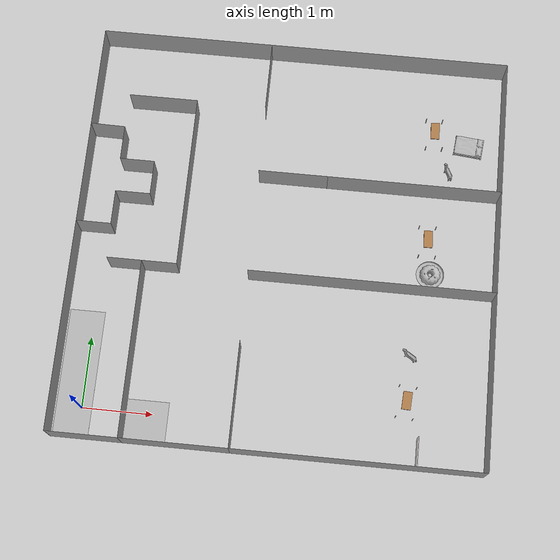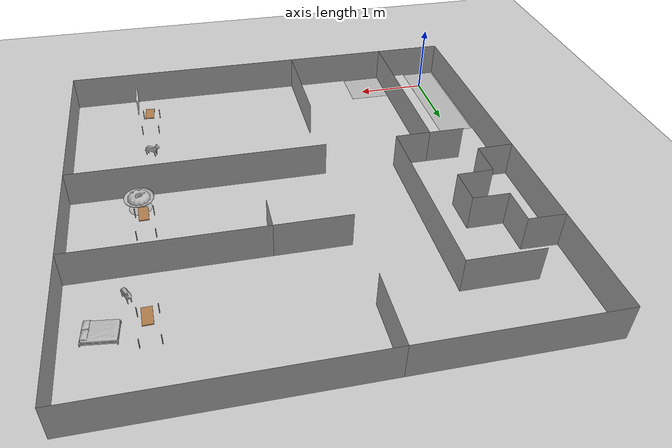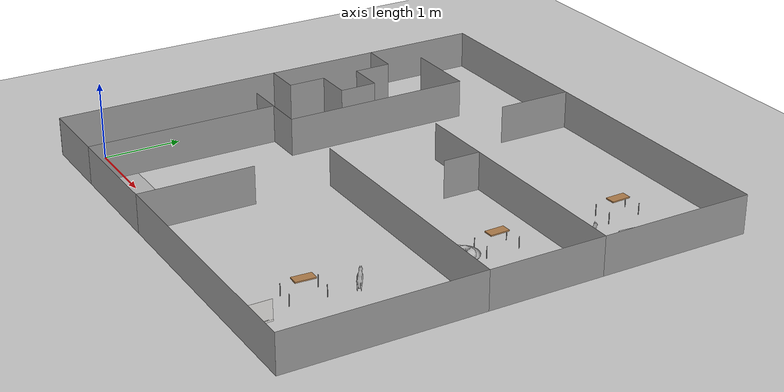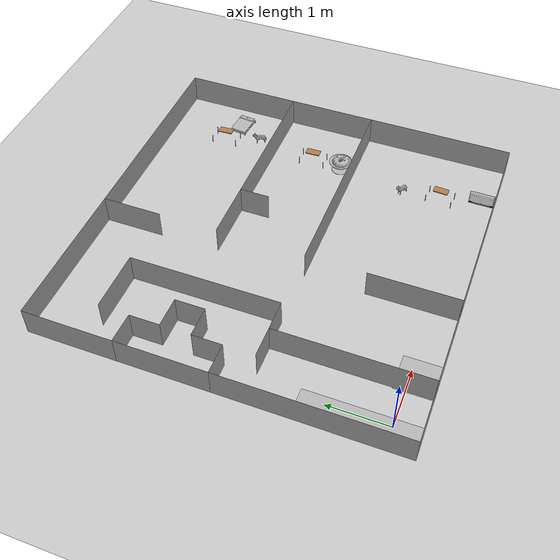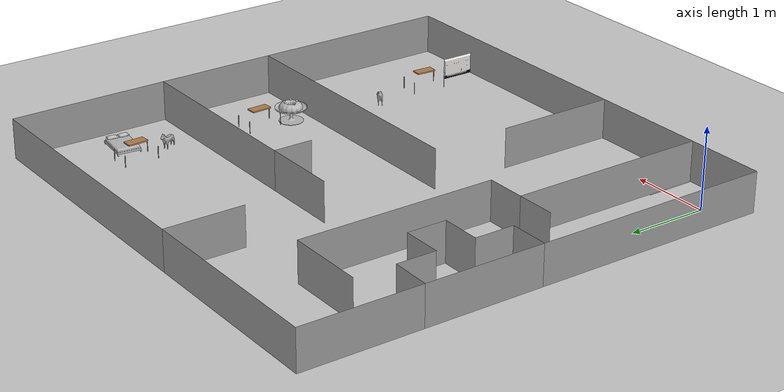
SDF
<sdf version="1.6">
 <world name="default">
  <light name="sun" type="directional">
   <pose>0 0 10 0 -0 0</pose>
   <diffuse>0.8 0.8 0.8 1</diffuse>
   <specular>0.2 0.2 0.2 1</specular>
   <attenuation>
    <range>1000</range>
    <constant>0.9</constant>
    <linear>0.01</linear>
    <quadratic>0.001</quadratic>
   </attenuation>
   <direction>-0.5 0.1 -0.9</direction>
   <spot><inner_angle>0</inner_angle><outer_angle>0</outer_angle><falloff>0</falloff></spot>
  </light>
  <model name="food">
   <pose>4.68908 2.32908 0.003781 1.57207 -0.004784 -1.83149</pose>
   <static>1</static>
   <link name="up">
    <visual name="visual">
     <geometry><mesh><uri>/home/cf/ai_ws/src/gazebo_pkg/world/food.dae</uri><scale>1 1 1</scale></mesh></geometry>
    </visual>
   </link>
  </model>
  <model name="television">
   <pose>4.66832 -0.195834 0.015327 1.5754 -0 0</pose>
   <static>1</static>
   <link name="up">
    <visual name="visual">
     <geometry>
      <mesh><uri>/home/cf/ai_ws/src/gazebo_pkg/world/television.dae</uri><scale>0.025 0.025 0.025</scale></mesh>
     </geometry>
    </visual>
   </link>
  </model>
  <model name="bed">
   <pose>5.1563 4.39255 0.001379 1.57971 -0.005009 -1.67665</pose>
   <static>1</static>
   <link name="up">
    <visual name="visual">
     <geometry>
      <mesh><uri>/home/cf/ai_ws/src/gazebo_pkg/world/arch3d-model.dae</uri><scale>0.21 0.21 0.21</scale></mesh>
     </geometry>
    </visual>
   </link>
  </model>
  <model name="dog">
   <pose>4.88849 3.95667 -0.000617 0.020771 -0.010242 2.02883</pose>
   <static>1</static>
   <link name="up">
    <visual name="visual">
     <geometry>
      <mesh><uri>/home/cf/ai_ws/src/gazebo_pkg/world/dog.dae</uri><scale>0.03 0.03 0.03</scale></mesh>
     </geometry>
    </visual>
   </link>
  </model>
  <model name="dog1">
   <pose>4.49439 1.17252 0.008625 0.03279 -0.051548 2.57468</pose>
   <static>1</static>
   <link name="up">
    <visual name="visual">
     <geometry>
      <mesh><uri>/home/cf/ai_ws/src/gazebo_pkg/world/dog.dae</uri><scale>0.03 0.03 0.03</scale></mesh>
     </geometry>
    </visual>
   </link>
  </model>
  <model name="ground_plane">
   <static>1</static>
   <link name="link">
    <collision name="collision">
     <geometry><plane><normal>0 0 1</normal><size>100 100</size></plane></geometry>
     <surface><friction><ode><mu>100</mu><mu2>50</mu2></ode></friction></surface>
    </collision>
    <visual name="visual">
     <cast_shadows>0</cast_shadows>
     <geometry><plane><normal>0 0 1</normal><size>100 100</size></plane></geometry>
     <material>
      <script><uri>file://media/materials/scripts/gazebo.material</uri><name>Gazebo/Grey</name></script>
     </material>
    </visual>
   </link>
  </model>
  <gravity>0 0 -9.8</gravity>
  <magnetic_field>6e-06 2.3e-05 -4.2e-05</magnetic_field>
  <atmosphere type="adiabatic"/>
  <physics name="default_physics" default="0" type="ode">
   <max_step_size>0.001</max_step_size>
   <real_time_factor>1</real_time_factor>
   <real_time_update_rate>1000</real_time_update_rate>
  </physics>
  <scene><ambient>0.4 0.4 0.4 1</ambient><background>0.7 0.7 0.7 1</background><shadows>1</shadows></scene>
  <spherical_coordinates>
   <surface_model>EARTH_WGS84</surface_model>
   <latitude_deg>0</latitude_deg>
   <longitude_deg>0</longitude_deg>
   <elevation>0</elevation>
   <heading_deg>0</heading_deg>
  </spherical_coordinates>
  <model name="xf">
   <pose>2.61586 2.56629 0 0 -0 0</pose>
   <link name="Wall_0">
    <collision name="Wall_0_Collision">
     <geometry><box><size>2.995 0 0.5</size></box></geometry>
     <pose>0 0 0.25 0 -0 0</pose>
    </collision>
    <visual name="Wall_0_Visual">
     <pose>0 0 0.25 0 -0 0</pose>
     <geometry><box><size>2.995 0 0.5</size></box></geometry>
     <material>
      <script><uri>file://media/materials/scripts/gazebo.material</uri><name>Gazebo/Grey</name></script>
      <ambient>1 1 1 1</ambient>
     </material>
     <meta><layer>0</layer></meta>
    </visual>
    <pose>-2.995 -1.495 0 0 -0 1.5708</pose>
   </link>
   <link name="Wall_10">
    <collision name="Wall_10_Collision">
     <geometry><box><size>0.495 0 0.5</size></box></geometry>
     <pose>0 0 0.25 0 -0 0</pose>
    </collision>
    <visual name="Wall_10_Visual">
     <pose>0 0 0.25 0 -0 0</pose>
     <geometry><box><size>0.495 0 0.5</size></box></geometry>
     <material>
      <script><uri>file://media/materials/scripts/gazebo.material</uri><name>Gazebo/Grey</name></script>
      <ambient>1 1 1 1</ambient>
     </material>
     <meta><layer>0</layer></meta>
    </visual>
    <pose>-2.2525 0.4975 0 0 -0 0</pose>
   </link>
   <link name="Wall_12">
    <collision name="Wall_12_Collision">
     <geometry><box><size>0.495 0 0.5</size></box></geometry>
     <pose>0 0 0.25 0 -0 0</pose>
    </collision>
    <visual name="Wall_12_Visual">
     <pose>0 0 0.25 0 -0 0</pose>
     <geometry><box><size>0.495 0 0.5</size></box></geometry>
     <material>
      <script><uri>file://media/materials/scripts/gazebo.material</uri><name>Gazebo/Grey</name></script>
      <ambient>1 1 1 1</ambient>
     </material>
     <meta><layer>0</layer></meta>
    </visual>
    <pose>-2.005 0.745 0 0 -0 1.5708</pose>
   </link>
   <link name="Wall_14">
    <collision name="Wall_14_Collision">
     <geometry><box><size>0.495 0 0.5</size></box></geometry>
     <pose>0 0 0.25 0 -0 0</pose>
    </collision>
    <visual name="Wall_14_Visual">
     <pose>0 0 0.25 0 -0 0</pose>
     <geometry><box><size>0.495 0 0.5</size></box></geometry>
     <material>
      <script><uri>file://media/materials/scripts/gazebo.material</uri><name>Gazebo/Grey</name></script>
      <ambient>1 1 1 1</ambient>
     </material>
     <meta><layer>0</layer></meta>
    </visual>
    <pose>-2.2525 0.9925 0 0 -0 3.14159</pose>
   </link>
   <link name="Wall_17">
    <collision name="Wall_17_Collision">
     <geometry><box><size>0.495 0 0.5</size></box></geometry>
     <pose>0 0 0.25 0 -0 0</pose>
    </collision>
    <visual name="Wall_17_Visual">
     <pose>0 0 0.25 0 -0 0</pose>
     <geometry><box><size>0.495 0 0.5</size></box></geometry>
     <material>
      <script><uri>file://media/materials/scripts/gazebo.material</uri><name>Gazebo/Grey</name></script>
      <ambient>1 1 1 1</ambient>
     </material>
     <meta><layer>0</layer></meta>
    </visual>
    <pose>-2.5 1.24 0 0 -0 1.5708</pose>
   </link>
   <link name="Wall_19">
    <collision name="Wall_19_Collision">
     <geometry><box><size>0.495 0 0.5</size></box></geometry>
     <pose>0 0 0.25 0 -0 0</pose>
    </collision>
    <visual name="Wall_19_Visual">
     <pose>0 0 0.25 0 -0 0</pose>
     <geometry><box><size>0.495 0 0.5</size></box></geometry>
     <material>
      <script><uri>file://media/materials/scripts/gazebo.material</uri><name>Gazebo/Grey</name></script>
      <ambient>1 1 1 1</ambient>
     </material>
     <meta><layer>0</layer></meta>
    </visual>
    <pose>-2.7475 1.4925 0 0 -0 3.12139</pose>
   </link>
   <link name="Wall_21">
    <collision name="Wall_21_Collision">
     <geometry><box><size>1.495 0 0.5</size></box></geometry>
     <pose>0 0 0.25 0 -0 0</pose>
    </collision>
    <visual name="Wall_21_Visual">
     <pose>0 0 0.25 0 -0 0</pose>
     <geometry><box><size>1.495 0 0.5</size></box></geometry>
     <material>
      <script><uri>file://media/materials/scripts/gazebo.material</uri><name>Gazebo/Grey</name></script>
      <ambient>1 1 1 1</ambient>
     </material>
     <meta><layer>0</layer></meta>
    </visual>
    <pose>-2.995 0.75 0 0 -0 1.5708</pose>
   </link>
   <link name="Wall_24">
    <collision name="Wall_24_Collision">
     <geometry><box><size>1.495 0 0.5</size></box></geometry>
     <pose>0 0 0.25 0 -0 0</pose>
    </collision>
    <visual name="Wall_24_Visual">
     <pose>0 0 0.25 0 -0 0</pose>
     <geometry><box><size>1.495 0 0.5</size></box></geometry>
     <material>
      <script><uri>file://media/materials/scripts/gazebo.material</uri><name>Gazebo/Grey</name></script>
      <ambient>1 1 1 1</ambient>
     </material>
     <meta><layer>0</layer></meta>
    </visual>
    <pose>-2.995 2.245 0 0 -0 1.5708</pose>
   </link>
   <link name="Wall_26">
    <collision name="Wall_26_Collision">
     <geometry><box><size>2.495 0 0.5</size></box></geometry>
     <pose>0 0 0.25 0 -0 0</pose>
    </collision>
    <visual name="Wall_26_Visual">
     <pose>0 0 0.25 0 -0 0</pose>
     <geometry><box><size>2.495 0 0.5</size></box></geometry>
     <material>
      <script><uri>file://media/materials/scripts/gazebo.material</uri><name>Gazebo/Grey</name></script>
      <ambient>1 1 1 1</ambient>
     </material>
     <meta><layer>0</layer></meta>
    </visual>
    <pose>-1.7475 2.9925 0 0 -0 0</pose>
   </link>
   <link name="Wall_28">
    <collision name="Wall_28_Collision">
     <geometry><box><size>0.995 0 0.5</size></box></geometry>
     <pose>0 0 0.25 0 -0 0</pose>
    </collision>
    <visual name="Wall_28_Visual">
     <pose>0 0 0.25 0 -0 0</pose>
     <geometry><box><size>0.995 0 0.5</size></box></geometry>
     <material>
      <script><uri>file://media/materials/scripts/gazebo.material</uri><name>Gazebo/Grey</name></script>
      <ambient>1 1 1 1</ambient>
     </material>
     <meta><layer>0</layer></meta>
    </visual>
    <pose>-0.5 2.495 0 0 -0 -1.5708</pose>
   </link>
   <link name="Wall_30">
    <collision name="Wall_30_Collision">
     <geometry><box><size>3.495 0 0.5</size></box></geometry>
     <pose>0 0 0.25 0 -0 0</pose>
    </collision>
    <visual name="Wall_30_Visual">
     <pose>0 0 0.25 0 -0 0</pose>
     <geometry><box><size>3.495 0 0.5</size></box></geometry>
     <material>
      <script><uri>file://media/materials/scripts/gazebo.material</uri><name>Gazebo/Grey</name></script>
      <ambient>1 1 1 1</ambient>
     </material>
     <meta><layer>0</layer></meta>
    </visual>
    <pose>1.2475 2.9925 0 0 -0 0</pose>
   </link>
   <link name="Wall_32">
    <collision name="Wall_32_Collision">
     <geometry><box><size>1.995 0 0.5</size></box></geometry>
     <pose>0 0 0.25 0 -0 0</pose>
    </collision>
    <visual name="Wall_32_Visual">
     <pose>0 0 0.25 0 -0 0</pose>
     <geometry><box><size>1.995 0 0.5</size></box></geometry>
     <material>
      <script><uri>file://media/materials/scripts/gazebo.material</uri><name>Gazebo/Grey</name></script>
      <ambient>1 1 1 1</ambient>
     </material>
     <meta><layer>0</layer></meta>
    </visual>
    <pose>2.995 1.995 0 0 -0 -1.5708</pose>
   </link>
   <link name="Wall_37">
    <collision name="Wall_37_Collision">
     <geometry><box><size>2.495 0 0.5</size></box></geometry>
     <pose>0 0 0.25 0 -0 0</pose>
    </collision>
    <visual name="Wall_37_Visual">
     <pose>0 0 0.25 0 -0 0</pose>
     <geometry><box><size>2.495 0 0.5</size></box></geometry>
     <material>
      <script><uri>file://media/materials/scripts/gazebo.material</uri><name>Gazebo/Grey</name></script>
      <ambient>1 1 1 1</ambient>
     </material>
     <meta><layer>0</layer></meta>
    </visual>
    <pose>1.7475 0.9975 0 0 -0 3.14159</pose>
   </link>
   <link name="Wall_39">
    <collision name="Wall_39_Collision">
     <geometry><box><size>0.495 0 0.5</size></box></geometry>
     <pose>0 0 0.25 0 -0 0</pose>
    </collision>
    <visual name="Wall_39_Visual">
     <pose>0 0 0.25 0 -0 0</pose>
     <geometry><box><size>0.495 0 0.5</size></box></geometry>
     <material>
      <script><uri>file://media/materials/scripts/gazebo.material</uri><name>Gazebo/Grey</name></script>
      <ambient>1 1 1 1</ambient>
     </material>
     <meta><layer>0</layer></meta>
    </visual>
    <pose>0.5 0.75 0 0 -0 -1.5708</pose>
   </link>
   <link name="Wall_4">
    <collision name="Wall_4_Collision">
     <geometry><box><size>0.495 0 0.5</size></box></geometry>
     <pose>0 0 0.25 0 -0 0</pose>
    </collision>
    <visual name="Wall_4_Visual">
     <pose>0 0 0.25 0 -0 0</pose>
     <geometry><box><size>0.495 0 0.5</size></box></geometry>
     <material>
      <script><uri>file://media/materials/scripts/gazebo.material</uri><name>Gazebo/Grey</name></script>
      <ambient>1 1 1 1</ambient>
     </material>
     <meta><layer>0</layer></meta>
    </visual>
    <pose>-2.7475 0.0025 0 0 -0 0</pose>
   </link>
   <link name="Wall_41">
    <collision name="Wall_41_Collision">
     <geometry><box><size>0.995 0 0.5</size></box></geometry>
     <pose>0 0 0.25 0 -0 0</pose>
    </collision>
    <visual name="Wall_41_Visual">
     <pose>0 0 0.25 0 -0 0</pose>
     <geometry><box><size>0.995 0 0.5</size></box></geometry>
     <material>
      <script><uri>file://media/materials/scripts/gazebo.material</uri><name>Gazebo/Grey</name></script>
      <ambient>1 1 1 1</ambient>
     </material>
     <meta><layer>0</layer></meta>
    </visual>
    <pose>0.0025 0.9975 0 0 -0 3.14159</pose>
   </link>
   <link name="Wall_43">
    <collision name="Wall_43_Collision">
     <geometry><box><size>1.49503 0 0.5</size></box></geometry>
     <pose>0 0 0.25 0 -0 0</pose>
    </collision>
    <visual name="Wall_43_Visual">
     <pose>0 0 0.25 0 -0 0</pose>
     <geometry><box><size>1.49503 0 0.5</size></box></geometry>
     <material>
      <script><uri>file://media/materials/scripts/gazebo.material</uri><name>Gazebo/Grey</name></script>
      <ambient>1 1 1 1</ambient>
     </material>
     <meta><layer>0</layer></meta>
    </visual>
    <pose>2.995 0.25 0 0 -0 -1.5708</pose>
   </link>
   <link name="Wall_47">
    <collision name="Wall_47_Collision">
     <geometry><box><size>3.495 0 0.5</size></box></geometry>
     <pose>0 0 0.25 0 -0 0</pose>
    </collision>
    <visual name="Wall_47_Visual">
     <pose>0 0 0.25 0 -0 0</pose>
     <geometry><box><size>3.495 0 0.5</size></box></geometry>
     <material>
      <script><uri>file://media/materials/scripts/gazebo.material</uri><name>Gazebo/Grey</name></script>
      <ambient>1 1 1 1</ambient>
     </material>
     <meta><layer>0</layer></meta>
    </visual>
    <pose>1.2475 -0.4975 0 0 -0 3.14159</pose>
   </link>
   <link name="Wall_49">
    <collision name="Wall_49_Collision">
     <geometry><box><size>2.495 0 0.5</size></box></geometry>
     <pose>0 0 0.25 0 -0 0</pose>
    </collision>
    <visual name="Wall_49_Visual">
     <pose>0 0 0.25 0 -0 0</pose>
     <geometry><box><size>2.495 0 0.5</size></box></geometry>
     <material>
      <script><uri>file://media/materials/scripts/gazebo.material</uri><name>Gazebo/Grey</name></script>
      <ambient>1 1 1 1</ambient>
     </material>
     <meta><layer>0</layer></meta>
    </visual>
    <pose>2.995 -1.745 0 0 -0 -1.5708</pose>
   </link>
   <link name="Wall_51">
    <collision name="Wall_51_Collision">
     <geometry><box><size>3.495 0 0.5</size></box></geometry>
     <pose>0 0 0.25 0 -0 0</pose>
    </collision>
    <visual name="Wall_51_Visual">
     <pose>0 0 0.25 0 -0 0</pose>
     <geometry><box><size>3.495 0 0.5</size></box></geometry>
     <material>
      <script><uri>file://media/materials/scripts/gazebo.material</uri><name>Gazebo/Grey</name></script>
      <ambient>1 1 1 1</ambient>
     </material>
     <meta><layer>0</layer></meta>
    </visual>
    <pose>1.2475 -2.9925 0 0 -0 3.14159</pose>
   </link>
   <link name="Wall_53">
    <collision name="Wall_53_Collision">
     <geometry><box><size>1.495 0 0.5</size></box></geometry>
     <pose>0 0 0.25 0 -0 0</pose>
    </collision>
    <visual name="Wall_53_Visual">
     <pose>0 0 0.25 0 -0 0</pose>
     <geometry><box><size>1.495 0 0.5</size></box></geometry>
     <material>
      <script><uri>file://media/materials/scripts/gazebo.material</uri><name>Gazebo/Grey</name></script>
      <ambient>1 1 1 1</ambient>
     </material>
     <meta><layer>0</layer></meta>
    </visual>
    <pose>-0.5 -2.245 0 0 -0 1.5708</pose>
   </link>
   <link name="Wall_55">
    <collision name="Wall_55_Collision">
     <geometry><box><size>1.495 0 0.5</size></box></geometry>
     <pose>0 0 0.25 0 -0 0</pose>
    </collision>
    <visual name="Wall_55_Visual">
     <pose>0 0 0.25 0 -0 0</pose>
     <geometry><box><size>1.495 0 0.5</size></box></geometry>
     <material>
      <script><uri>file://media/materials/scripts/gazebo.material</uri><name>Gazebo/Grey</name></script>
      <ambient>1 1 1 1</ambient>
     </material>
     <meta><layer>0</layer></meta>
    </visual>
    <pose>-1.2475 -2.9925 0 0 -0 3.14159</pose>
   </link>
   <link name="Wall_57">
    <collision name="Wall_57_Collision">
     <geometry><box><size>2.495 0 0.5</size></box></geometry>
     <pose>0 0 0.25 0 -0 0</pose>
    </collision>
    <visual name="Wall_57_Visual">
     <pose>0 0 0.25 0 -0 0</pose>
     <geometry><box><size>2.495 0 0.5</size></box></geometry>
     <material>
      <script><uri>file://media/materials/scripts/gazebo.material</uri><name>Gazebo/Grey</name></script>
      <ambient>1 1 1 1</ambient>
     </material>
     <meta><layer>0</layer></meta>
    </visual>
    <pose>-1.995 -1.745 0 0 -0 1.5708</pose>
   </link>
   <link name="Wall_59">
    <collision name="Wall_59_Collision">
     <geometry><box><size>0.495 0 0.5</size></box></geometry>
     <pose>0 0 0.25 0 -0 0</pose>
    </collision>
    <visual name="Wall_59_Visual">
     <pose>0 0 0.25 0 -0 0</pose>
     <geometry><box><size>0.495 0 0.5</size></box></geometry>
     <material>
      <script><uri>file://media/materials/scripts/gazebo.material</uri><name>Gazebo/Grey</name></script>
      <ambient>1 1 1 1</ambient>
     </material>
     <meta><layer>0</layer></meta>
    </visual>
    <pose>-2.2425 -0.4975 0 0 -0 3.14159</pose>
   </link>
   <link name="Wall_61">
    <collision name="Wall_61_Collision">
     <geometry><box><size>0.495 0 0.5</size></box></geometry>
     <pose>0 0 0.25 0 -0 0</pose>
    </collision>
    <visual name="Wall_61_Visual">
     <pose>0 0 0.25 0 -0 0</pose>
     <geometry><box><size>0.495 0 0.5</size></box></geometry>
     <material>
      <script><uri>file://media/materials/scripts/gazebo.material</uri><name>Gazebo/Grey</name></script>
      <ambient>1 1 1 1</ambient>
     </material>
     <meta><layer>0</layer></meta>
    </visual>
    <pose>-1.7475 -0.4975 0 0 -0 0</pose>
   </link>
   <link name="Wall_63">
    <collision name="Wall_63_Collision">
     <geometry><box><size>2.495 0 0.5</size></box></geometry>
     <pose>0 0 0.25 0 -0 0</pose>
    </collision>
    <visual name="Wall_63_Visual">
     <pose>0 0 0.25 0 -0 0</pose>
     <geometry><box><size>2.495 0 0.5</size></box></geometry>
     <material>
      <script><uri>file://media/materials/scripts/gazebo.material</uri><name>Gazebo/Grey</name></script>
      <ambient>1 1 1 1</ambient>
     </material>
     <meta><layer>0</layer></meta>
    </visual>
    <pose>-1.5 0.75 0 0 -0 1.5708</pose>
   </link>
   <link name="Wall_65">
    <collision name="Wall_65_Collision">
     <geometry><box><size>0.995 0 0.5</size></box></geometry>
     <pose>0 0 0.25 0 -0 0</pose>
    </collision>
    <visual name="Wall_65_Visual">
     <pose>0 0 0.25 0 -0 0</pose>
     <geometry><box><size>0.995 0 0.5</size></box></geometry>
     <material>
      <script><uri>file://media/materials/scripts/gazebo.material</uri><name>Gazebo/Grey</name></script>
      <ambient>1 1 1 1</ambient>
     </material>
     <meta><layer>0</layer></meta>
    </visual>
    <pose>-1.9975 1.9975 0 0 -0 3.14159</pose>
   </link>
   <link name="Wall_67">
    <collision name="Wall_67_Collision">
     <geometry><box><size>0.995 0 0.5</size></box></geometry>
     <pose>0 0 0.25 0 -0 0</pose>
    </collision>
    <visual name="Wall_67_Visual">
     <pose>0 0 0.25 0 -0 0</pose>
     <geometry><box><size>0.995 0 0.5</size></box></geometry>
     <material>
      <script><uri>file://media/materials/scripts/gazebo.material</uri><name>Gazebo/Grey</name></script>
      <ambient>1 1 1 1</ambient>
     </material>
     <meta><layer>0</layer></meta>
    </visual>
    <pose>-2.4925 -2.9925 0 0 -0 3.14159</pose>
   </link>
   <link name="Wall_8">
    <collision name="Wall_8_Collision">
     <geometry><box><size>0.495 0 0.5</size></box></geometry>
     <pose>0 0 0.25 0 -0 0</pose>
    </collision>
    <visual name="Wall_8_Visual">
     <pose>0 0 0.25 0 -0 0</pose>
     <geometry><box><size>0.495 0 0.5</size></box></geometry>
     <material>
      <script><uri>file://media/materials/scripts/gazebo.material</uri><name>Gazebo/Grey</name></script>
      <ambient>1 1 1 1</ambient>
     </material>
     <meta><layer>0</layer></meta>
    </visual>
    <pose>-2.5 0.25 0 0 -0 1.5708</pose>
   </link>
   <static>1</static>
  </model>
  <model name="start_plane">
   <static>1</static>
   <link name="link">
    <collision name="collision">
     <geometry><plane><normal>0 0 1</normal><size>0.5 1.8</size></plane></geometry>
     <surface><friction><ode><mu>100</mu><mu2>50</mu2></ode></friction></surface>
    </collision>
    <visual name="visual">
     <cast_shadows>0</cast_shadows>
     <geometry><plane><normal>0 0 1</normal><size>0.5 1.8</size></plane></geometry>
     <material>
      <script>
       <uri>model://start_plane/materials/scripts</uri>
       <uri>model://start_plane/materials/textures/</uri>
       <name>StartPlane/Image</name>
      </script>
     </material>
    </visual>
   </link>
   <pose>-0.110172 0.491277 0 0 -0 0</pose>
  </model>
  <model name="end_plane">
   <static>1</static>
   <link name="link">
    <collision name="collision">
     <geometry><plane><normal>0 0 1</normal><size>0.6 0.6</size></plane></geometry>
     <surface><friction><ode><mu>100</mu><mu2>50</mu2></ode></friction></surface>
    </collision>
    <visual name="visual">
     <cast_shadows>0</cast_shadows>
     <geometry><plane><normal>0 0 1</normal><size>0.6 0.6</size></plane></geometry>
     <material>
      <script>
       <uri>model://end_plane/materials/scripts</uri>
       <uri>model://end_plane/materials/textures/</uri>
       <name>EndPlane/Image</name>
      </script>
     </material>
    </visual>
   </link>
   <pose>0.907499 -0.109967 0 0 -0 0</pose>
  </model>
  <model name="table">
   <static>1</static>
   <link name="link">
    <collision name="surface">
     <pose>0 0 0.3 0 -0 0</pose>
     <geometry><box><size>0.25 0.125 0.015</size></box></geometry>
     <surface><friction><ode><mu>0.6</mu><mu2>0.6</mu2></ode></friction></surface>
    </collision>
    <visual name="visual1">
     <pose>0 0 0.3 0 -0 0</pose>
     <geometry><box><size>0.25 0.125 0.015</size></box></geometry>
     <material>
      <script><uri>file://media/materials/scripts/gazebo.material</uri><name>Gazebo/Wood</name></script>
     </material>
    </visual>
    <collision name="front_left_leg">
     <pose>0.68 0.38 0.15 0 -0 0</pose>
     <geometry><cylinder><radius>0.005</radius><length>0.15</length></cylinder></geometry>
    </collision>
    <visual name="front_left_leg">
     <pose>0.22 0.12 0.15 0 -0 0</pose>
     <geometry><cylinder><radius>0.005</radius><length>0.15</length></cylinder></geometry>
     <material>
      <script><uri>file://media/materials/scripts/gazebo.material</uri><name>Gazebo/Grey</name></script>
     </material>
    </visual>
    <collision name="front_right_leg">
     <pose>0.22 -0.12 0.15 0 -0 0</pose>
     <geometry><cylinder><radius>0.005</radius><length>0.15</length></cylinder></geometry>
    </collision>
    <visual name="front_right_leg">
     <pose>0.22 -0.12 0.15 0 -0 0</pose>
     <geometry><cylinder><radius>0.005</radius><length>0.15</length></cylinder></geometry>
     <material>
      <script><uri>file://media/materials/scripts/gazebo.material</uri><name>Gazebo/Grey</name></script>
     </material>
    </visual>
    <collision name="back_right_leg">
     <pose>-0.22 -0.12 0.15 0 -0 0</pose>
     <geometry><cylinder><radius>0.005</radius><length>0.15</length></cylinder></geometry>
    </collision>
    <visual name="back_right_leg">
     <pose>-0.22 -0.12 0.15 0 -0 0</pose>
     <geometry><cylinder><radius>0.005</radius><length>0.15</length></cylinder></geometry>
     <material>
      <script><uri>file://media/materials/scripts/gazebo.material</uri><name>Gazebo/Grey</name></script>
     </material>
    </visual>
    <collision name="back_left_leg">
     <pose>-0.22 0.12 0.15 0 -0 0</pose>
     <geometry><cylinder><radius>0.005</radius><length>0.15</length></cylinder></geometry>
    </collision>
    <visual name="back_left_leg">
     <pose>-0.22 0.12 0.15 0 -0 0</pose>
     <geometry><cylinder><radius>0.005</radius><length>0.15</length></cylinder></geometry>
     <material>
      <script><uri>file://media/materials/scripts/gazebo.material</uri><name>Gazebo/Grey</name></script>
     </material>
    </visual>
   </link>
   <pose>4.62375 4.49587 0 0 0 -1.53399</pose>
  </model>
  <model name="table_0">
   <static>1</static>
   <link name="link">
    <collision name="surface">
     <pose>0 0 0.3 0 -0 0</pose>
     <geometry><box><size>0.25 0.125 0.015</size></box></geometry>
     <surface><friction><ode><mu>0.6</mu><mu2>0.6</mu2></ode></friction></surface>
    </collision>
    <visual name="visual1">
     <pose>0 0 0.3 0 -0 0</pose>
     <geometry><box><size>0.25 0.125 0.015</size></box></geometry>
     <material>
      <script><uri>file://media/materials/scripts/gazebo.material</uri><name>Gazebo/Wood</name></script>
     </material>
    </visual>
    <collision name="front_left_leg">
     <pose>0.68 0.38 0.15 0 -0 0</pose>
     <geometry><cylinder><radius>0.005</radius><length>0.15</length></cylinder></geometry>
    </collision>
    <visual name="front_left_leg">
     <pose>0.22 0.12 0.15 0 -0 0</pose>
     <geometry><cylinder><radius>0.005</radius><length>0.15</length></cylinder></geometry>
     <material>
      <script><uri>file://media/materials/scripts/gazebo.material</uri><name>Gazebo/Grey</name></script>
     </material>
    </visual>
    <collision name="front_right_leg">
     <pose>0.22 -0.12 0.15 0 -0 0</pose>
     <geometry><cylinder><radius>0.005</radius><length>0.15</length></cylinder></geometry>
    </collision>
    <visual name="front_right_leg">
     <pose>0.22 -0.12 0.15 0 -0 0</pose>
     <geometry><cylinder><radius>0.005</radius><length>0.15</length></cylinder></geometry>
     <material>
      <script><uri>file://media/materials/scripts/gazebo.material</uri><name>Gazebo/Grey</name></script>
     </material>
    </visual>
    <collision name="back_right_leg">
     <pose>-0.22 -0.12 0.15 0 -0 0</pose>
     <geometry><cylinder><radius>0.005</radius><length>0.15</length></cylinder></geometry>
    </collision>
    <visual name="back_right_leg">
     <pose>-0.22 -0.12 0.15 0 -0 0</pose>
     <geometry><cylinder><radius>0.005</radius><length>0.15</length></cylinder></geometry>
     <material>
      <script><uri>file://media/materials/scripts/gazebo.material</uri><name>Gazebo/Grey</name></script>
     </material>
    </visual>
    <collision name="back_left_leg">
     <pose>-0.22 0.12 0.15 0 -0 0</pose>
     <geometry><cylinder><radius>0.005</radius><length>0.15</length></cylinder></geometry>
    </collision>
    <visual name="back_left_leg">
     <pose>-0.22 0.12 0.15 0 -0 0</pose>
     <geometry><cylinder><radius>0.005</radius><length>0.15</length></cylinder></geometry>
     <material>
      <script><uri>file://media/materials/scripts/gazebo.material</uri><name>Gazebo/Grey</name></script>
     </material>
    </visual>
   </link>
   <pose>4.62263 2.82159 0.005451 0 0 -1.54014</pose>
  </model>
  <model name="table_1">
   <static>1</static>
   <link name="link">
    <collision name="surface">
     <pose>0 0 0.3 0 -0 0</pose>
     <geometry><box><size>0.25 0.125 0.015</size></box></geometry>
     <surface><friction><ode><mu>0.6</mu><mu2>0.6</mu2></ode></friction></surface>
    </collision>
    <visual name="visual1">
     <pose>0 0 0.3 0 -0 0</pose>
     <geometry><box><size>0.25 0.125 0.015</size></box></geometry>
     <material>
      <script><uri>file://media/materials/scripts/gazebo.material</uri><name>Gazebo/Wood</name></script>
     </material>
    </visual>
    <collision name="front_left_leg">
     <pose>0.68 0.38 0.15 0 -0 0</pose>
     <geometry><cylinder><radius>0.005</radius><length>0.15</length></cylinder></geometry>
    </collision>
    <visual name="front_left_leg">
     <pose>0.22 0.12 0.15 0 -0 0</pose>
     <geometry><cylinder><radius>0.005</radius><length>0.15</length></cylinder></geometry>
     <material>
      <script><uri>file://media/materials/scripts/gazebo.material</uri><name>Gazebo/Grey</name></script>
     </material>
    </visual>
    <collision name="front_right_leg">
     <pose>0.22 -0.12 0.15 0 -0 0</pose>
     <geometry><cylinder><radius>0.005</radius><length>0.15</length></cylinder></geometry>
    </collision>
    <visual name="front_right_leg">
     <pose>0.22 -0.12 0.15 0 -0 0</pose>
     <geometry><cylinder><radius>0.005</radius><length>0.15</length></cylinder></geometry>
     <material>
      <script><uri>file://media/materials/scripts/gazebo.material</uri><name>Gazebo/Grey</name></script>
     </material>
    </visual>
    <collision name="back_right_leg">
     <pose>-0.22 -0.12 0.15 0 -0 0</pose>
     <geometry><cylinder><radius>0.005</radius><length>0.15</length></cylinder></geometry>
    </collision>
    <visual name="back_right_leg">
     <pose>-0.22 -0.12 0.15 0 -0 0</pose>
     <geometry><cylinder><radius>0.005</radius><length>0.15</length></cylinder></geometry>
     <material>
      <script><uri>file://media/materials/scripts/gazebo.material</uri><name>Gazebo/Grey</name></script>
     </material>
    </visual>
    <collision name="back_left_leg">
     <pose>-0.22 0.12 0.15 0 -0 0</pose>
     <geometry><cylinder><radius>0.005</radius><length>0.15</length></cylinder></geometry>
    </collision>
    <visual name="back_left_leg">
     <pose>-0.22 0.12 0.15 0 -0 0</pose>
     <geometry><cylinder><radius>0.005</radius><length>0.15</length></cylinder></geometry>
     <material>
      <script><uri>file://media/materials/scripts/gazebo.material</uri><name>Gazebo/Grey</name></script>
     </material>
    </visual>
   </link>
   <pose>4.47479 0.478249 0 0 0 -1.63594</pose>
  </model>
 </world>
</sdf>
